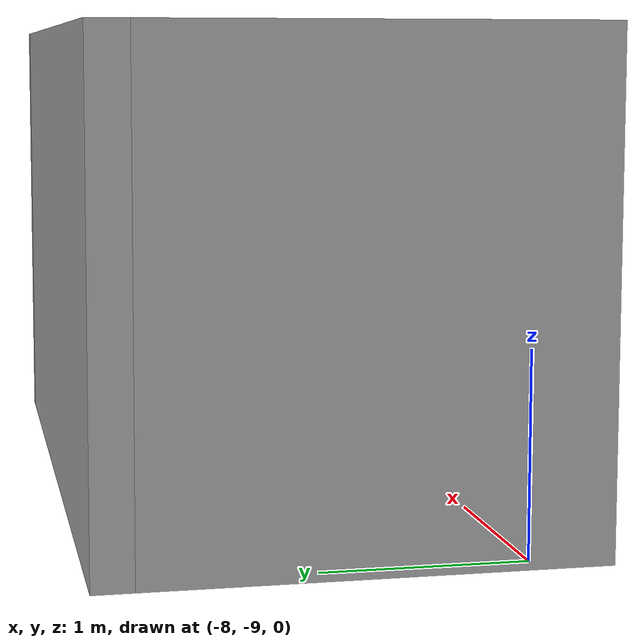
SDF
<?xml version='1.0'?>
<sdf version='1.4'>
  <model name='mk_restaurant'>
    <link name='Wall_0'>
      <collision name='Wall_0_Collision'>
        <geometry>
          <box>
            <size>1.0901 0.2 2.5</size>
          </box>
        </geometry>
        <pose>0 0 1.25 0 -0 0</pose>
      </collision>
      <visual name='Wall_0_Visual'>
        <pose>0 0 1.25 0 -0 0</pose>
        <geometry>
          <box>
            <size>1.0901 0.2 2.5</size>
          </box>
        </geometry>
        <material>
          <script>
            <uri>file://media/materials/scripts/gazebo.material</uri>
            <name>Gazebo/Grey</name>
          </script>
        </material>
      </visual>
      <velocity_decay>
        <linear>0</linear>
        <angular>0</angular>
      </velocity_decay>
      <pose>-4.30605 -9.2359 0 0 -0 0</pose>
    </link>
    <link name='Wall_1'>
      <collision name='Wall_1_Collision'>
        <geometry>
          <box>
            <size>2.38917 0.2 2.5</size>
          </box>
        </geometry>
        <pose>0 0 1.25 0 -0 0</pose>
      </collision>
      <visual name='Wall_1_Visual'>
        <pose>0 0 1.25 0 -0 0</pose>
        <geometry>
          <box>
            <size>2.38917 0.2 2.5</size>
          </box>
        </geometry>
        <material>
          <script>
            <uri>file://media/materials/scripts/gazebo.material</uri>
            <name>Gazebo/Grey</name>
          </script>
        </material>
      </visual>
      <velocity_decay>
        <linear>0</linear>
        <angular>0</angular>
      </velocity_decay>
      <pose>-3.86352 -8.14132 0 0 -0 1.5731</pose>
    </link>
    <link name='Wall_2'>
      <collision name='Wall_2_Collision'>
        <geometry>
          <box>
            <size>4.372 0.2 2.5</size>
          </box>
        </geometry>
        <pose>0 0 1.25 0 -0 0</pose>
      </collision>
      <visual name='Wall_2_Visual'>
        <pose>0 0 1.25 0 -0 0</pose>
        <geometry>
          <box>
            <size>4.372 0.2 2.5</size>
          </box>
        </geometry>
        <material>
          <script>
            <uri>file://media/materials/scripts/gazebo.material</uri>
            <name>Gazebo/Grey</name>
          </script>
        </material>
      </visual>
      <velocity_decay>
        <linear>0</linear>
        <angular>0</angular>
      </velocity_decay>
      <pose>-5.95204 -7.04674 0 0 -0 3.14159</pose>
    </link>
    <link name='Wall_3'>
      <collision name='Wall_3_Collision'>
        <geometry>
          <box>
            <size>2.42492 0.2 2.5</size>
          </box>
        </geometry>
        <pose>0 0 1.25 0 -0 0</pose>
      </collision>
      <visual name='Wall_3_Visual'>
        <pose>0 0 1.25 0 -0 0</pose>
        <geometry>
          <box>
            <size>2.42492 0.2 2.5</size>
          </box>
        </geometry>
        <material>
          <script>
            <uri>file://media/materials/scripts/gazebo.material</uri>
            <name>Gazebo/Grey</name>
          </script>
        </material>
      </visual>
      <velocity_decay>
        <linear>0</linear>
        <angular>0</angular>
      </velocity_decay>
      <pose>-8.03804 -8.1592 0 0 0 -1.5708</pose>
    </link>
    <static>1</static>
  </model>
</sdf>
